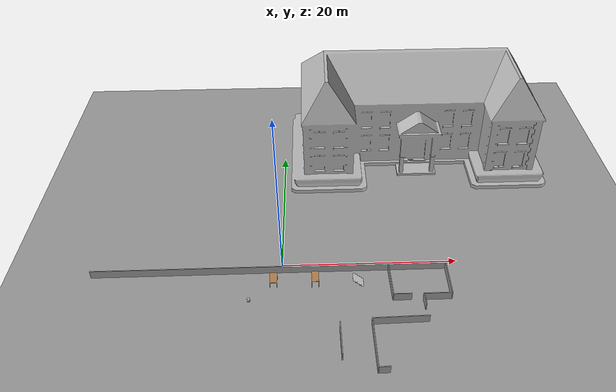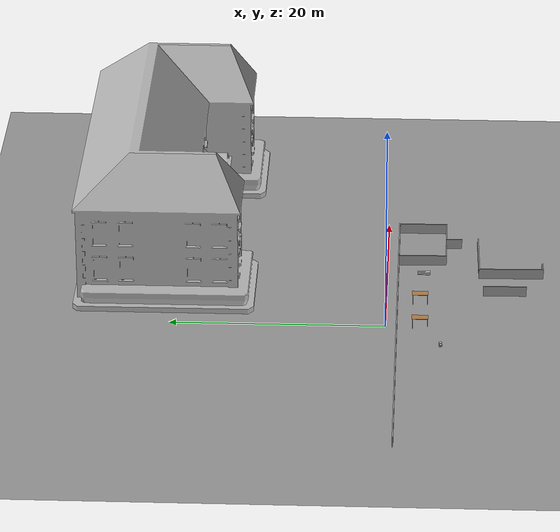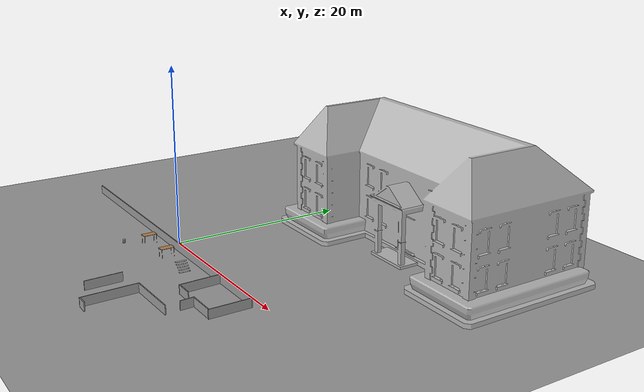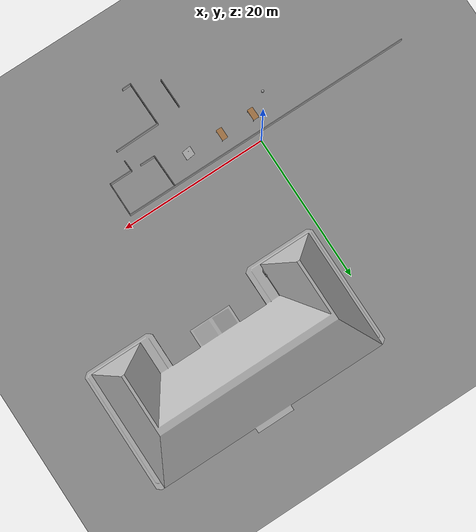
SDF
<sdf version="1.6">
 <world name="default">
  <model name="ground_plane_0">
   <static>1</static>
   <link name="link">
    <collision name="collision">
     <geometry><plane><normal>0 0 1</normal><size>100 100</size></plane></geometry>
     <surface><friction><ode><mu>100</mu><mu2>50</mu2></ode></friction></surface>
    </collision>
    <visual name="visual">
     <cast_shadows>0</cast_shadows>
     <geometry><plane><normal>0 0 1</normal><size>100 100</size></plane></geometry>
     <material>
      <script><uri>file://media/materials/scripts/gazebo.material</uri><name>Gazebo/Grey</name></script>
     </material>
    </visual>
    <velocity_decay><linear>0</linear><angular>0</angular></velocity_decay>
   </link>
   <pose>0.497681 0 0 0 -0 0</pose>
  </model>
  <model name="mobile_base">
   <link name="base_footprint">
    <inertial>
     <pose>-0.002635 -4.1e-05 0.129243 0 -0 0</pose>
     <mass>4.6973</mass>
     <inertia>
      <ixx>0.1365</ixx>
      <ixy>-2.51802e-05</ixy>
      <ixz>0.0108194</ixz>
      <iyy>0.132157</iyy>
      <iyz>4.89572e-05</iyz>
      <izz>0.0741648</izz>
     </inertia>
    </inertial>
    <collision name="base_footprint_fixed_joint_lump__base_collision">
     <pose>0 0 0.06969 0 -0 0</pose>
     <geometry><cylinder><length>0.10938</length><radius>0.178</radius></cylinder></geometry>
    </collision>
    <collision name="base_footprint_fixed_joint_lump__camera_link_collision_1">
     <pose>-0.087 -0.0015 0.2972 0 -0 0</pose>
     <geometry><box><size>0.073 0.276 0.072</size></box></geometry>
    </collision>
    <collision name="base_footprint_fixed_joint_lump__caster_back_link_collision_2">
     <pose>-0.135 0 0.0192 -1.5708 0 0</pose>
     <geometry><cylinder><length>0.0176</length><radius>0.017</radius></cylinder></geometry>
     <surface>
      <contact><ode><kp>1e+06</kp><kd>100</kd><max_vel>1</max_vel><min_depth>0.001</min_depth></ode></contact>
      <friction><ode><mu>0</mu><mu2>0</mu2></ode></friction>
     </surface>
    </collision>
    <collision name="base_footprint_fixed_joint_lump__caster_front_link_collision_3">
     <pose>0.115 0 0.0172 -1.5708 0 0</pose>
     <geometry><cylinder><length>0.0176</length><radius>0.017</radius></cylinder></geometry>
     <surface>
      <contact><ode><kp>1e+06</kp><kd>100</kd><max_vel>1</max_vel><min_depth>0.001</min_depth></ode></contact>
      <friction><ode><mu>0</mu><mu2>0</mu2></ode></friction>
     </surface>
    </collision>
    <collision name="base_footprint_fixed_joint_lump__mount_asus_xtion_pro_link_collision_4">
     <pose>-0.1024 0 0.2822 0 -0 0</pose>
     <geometry><box><size>0.033 0.276 0.012</size></box></geometry>
    </collision>
    <collision name="base_footprint_fixed_joint_lump__plate_bottom_link_collision_5">
     <pose>0 0 0.1408 0 -0 0</pose>
     <geometry><cylinder><length>0.006</length><radius>0.17</radius></cylinder></geometry>
    </collision>
    <collision name="base_footprint_fixed_joint_lump__plate_middle_link_collision_6">
     <pose>0 0 0.1976 0 -0 0</pose>
     <geometry><cylinder><length>0.006</length><radius>0.17</radius></cylinder></geometry>
    </collision>
    <collision name="base_footprint_fixed_joint_lump__plate_top_link_collision_7">
     <pose>0 0 0.4068 0 -0 0</pose>
     <geometry><cylinder><length>0.006</length><radius>0.17</radius></cylinder></geometry>
    </collision>
    <collision name="base_footprint_fixed_joint_lump__pole_bottom_0_link_collision_8">
     <pose>0.12 0.082 0.113 0 -0 0</pose>
     <geometry><cylinder><length>0.0492</length><radius>0.006</radius></cylinder></geometry>
    </collision>
    <collision name="base_footprint_fixed_joint_lump__pole_bottom_1_link_collision_9">
     <pose>0.055 0.12 0.113 0 -0 0</pose>
     <geometry><cylinder><length>0.0492</length><radius>0.006</radius></cylinder></geometry>
    </collision>
    <collision name="base_footprint_fixed_joint_lump__pole_bottom_2_link_collision_10">
     <pose>-0.055 0.12 0.113 0 -0 0</pose>
     <geometry><cylinder><length>0.0492</length><radius>0.006</radius></cylinder></geometry>
    </collision>
    <collision name="base_footprint_fixed_joint_lump__pole_bottom_3_link_collision_11">
     <pose>0.12 -0.082 0.113 0 -0 0</pose>
     <geometry><cylinder><length>0.0492</length><radius>0.006</radius></cylinder></geometry>
    </collision>
    <collision name="base_footprint_fixed_joint_lump__pole_bottom_4_link_collision_12">
     <pose>0.055 -0.12 0.113 0 -0 0</pose>
     <geometry><cylinder><length>0.0492</length><radius>0.006</radius></cylinder></geometry>
    </collision>
    <collision name="base_footprint_fixed_joint_lump__pole_bottom_5_link_collision_13">
     <pose>-0.055 -0.12 0.113 0 -0 0</pose>
     <geometry><cylinder><length>0.0492</length><radius>0.006</radius></cylinder></geometry>
    </collision>
    <collision name="base_footprint_fixed_joint_lump__pole_kinect_0_link_collision_14">
     <pose>-0.1024 0.098 0.2474 0 -0 0</pose>
     <geometry><cylinder><length>0.0936</length><radius>0.006</radius></cylinder></geometry>
    </collision>
    <collision name="base_footprint_fixed_joint_lump__pole_kinect_1_link_collision_15">
     <pose>-0.1024 -0.098 0.2474 0 -0 0</pose>
     <geometry><cylinder><length>0.0936</length><radius>0.006</radius></cylinder></geometry>
    </collision>
    <collision name="base_footprint_fixed_joint_lump__pole_middle_0_link_collision_16">
     <pose>0.0381 0.1505 0.1742 0 -0 0</pose>
     <geometry><cylinder><length>0.0608</length><radius>0.006</radius></cylinder></geometry>
    </collision>
    <collision name="base_footprint_fixed_joint_lump__pole_middle_1_link_collision_17">
     <pose>0.0381 -0.1505 0.1742 0 -0 0</pose>
     <geometry><cylinder><length>0.0608</length><radius>0.006</radius></cylinder></geometry>
    </collision>
    <collision name="base_footprint_fixed_joint_lump__pole_middle_2_link_collision_18">
     <pose>-0.0381 0.1505 0.1742 0 -0 0</pose>
     <geometry><cylinder><length>0.0608</length><radius>0.006</radius></cylinder></geometry>
    </collision>
    <collision name="base_footprint_fixed_joint_lump__pole_middle_3_link_collision_19">
     <pose>-0.0381 -0.1505 0.1742 0 -0 0</pose>
     <geometry><cylinder><length>0.0608</length><radius>0.006</radius></cylinder></geometry>
    </collision>
    <collision name="base_footprint_fixed_joint_lump__pole_top_0_link_collision_20">
     <pose>0.0381 0.1505 0.3022 0 -0 0</pose>
     <geometry><cylinder><length>0.2032</length><radius>0.006</radius></cylinder></geometry>
    </collision>
    <collision name="base_footprint_fixed_joint_lump__pole_top_1_link_collision_21">
     <pose>0.0381 -0.1505 0.3022 0 -0 0</pose>
     <geometry><cylinder><length>0.2032</length><radius>0.006</radius></cylinder></geometry>
    </collision>
    <collision name="base_footprint_fixed_joint_lump__pole_top_2_link_collision_22">
     <pose>-0.0381 0.1505 0.3022 0 -0 0</pose>
     <geometry><cylinder><length>0.2032</length><radius>0.006</radius></cylinder></geometry>
    </collision>
    <collision name="base_footprint_fixed_joint_lump__pole_top_3_link_collision_23">
     <pose>-0.0381 -0.1505 0.3022 0 -0 0</pose>
     <geometry><cylinder><length>0.2032</length><radius>0.006</radius></cylinder></geometry>
    </collision>
    <visual name="base_footprint_fixed_joint_lump__base_link_visual">
     <pose>0.001 0 0.06219 0 -0 0</pose>
     <geometry>
      <mesh><scale>1 1 1</scale><uri>/opt/ros/kinetic/share/kobuki_description/meshes/main_body.dae</uri></mesh>
     </geometry>
     <material><script><uri>__default__</uri><name>__default__</name></script></material>
    </visual>
    <visual name="base_footprint_fixed_joint_lump__camera_link_visual_1">
     <pose>-0.102 0.002 0.3012 0 -0 0</pose>
     <geometry>
      <mesh>
       <scale>1 1 1</scale>
       <uri>/opt/ros/kinetic/share/turtlebot_description/meshes/sensors/xtion_pro_camera.dae</uri>
      </mesh>
     </geometry>
     <material><script><uri>__default__</uri><name>__default__</name></script></material>
    </visual>
    <visual name="base_footprint_fixed_joint_lump__mount_asus_xtion_pro_link_visual_2">
     <pose>-0.1024 0 0.2822 -1.5708 0 0</pose>
     <geometry>
      <mesh>
       <scale>1 1 1</scale>
       <uri>/opt/ros/kinetic/share/turtlebot_description/meshes/sensors/xtion_pro_stack.dae</uri>
      </mesh>
     </geometry>
    </visual>
    <visual name="base_footprint_fixed_joint_lump__plate_bottom_link_visual_3">
     <pose>0.02364 0 0.1408 0 -0 0</pose>
     <geometry>
      <mesh>
       <scale>1 1 1</scale>
       <uri>/opt/ros/kinetic/share/turtlebot_description/meshes/stacks/hexagons/plate_bottom.dae</uri>
      </mesh>
     </geometry>
    </visual>
    <visual name="base_footprint_fixed_joint_lump__plate_middle_link_visual_4">
     <pose>-0.01364 0 0.1976 0 -0 0</pose>
     <geometry>
      <mesh>
       <scale>1 1 1</scale>
       <uri>/opt/ros/kinetic/share/turtlebot_description/meshes/stacks/hexagons/plate_middle.dae</uri>
      </mesh>
     </geometry>
    </visual>
    <visual name="base_footprint_fixed_joint_lump__plate_top_link_visual_5">
     <pose>-0.01364 0 0.4068 0 -0 0</pose>
     <geometry>
      <mesh>
       <scale>1 1 1</scale>
       <uri>/opt/ros/kinetic/share/turtlebot_description/meshes/stacks/hexagons/plate_top.dae</uri>
      </mesh>
     </geometry>
    </visual>
    <visual name="base_footprint_fixed_joint_lump__pole_bottom_0_link_visual_6">
     <pose>0.12 0.082 0.113 0 -0 0</pose>
     <geometry>
      <mesh>
       <scale>1 1 1</scale>
       <uri>/opt/ros/kinetic/share/turtlebot_description/meshes/stacks/hexagons/pole_bottom.dae</uri>
      </mesh>
     </geometry>
    </visual>
    <visual name="base_footprint_fixed_joint_lump__pole_bottom_1_link_visual_7">
     <pose>0.055 0.12 0.113 0 -0 0</pose>
     <geometry>
      <mesh>
       <scale>1 1 1</scale>
       <uri>/opt/ros/kinetic/share/turtlebot_description/meshes/stacks/hexagons/pole_bottom.dae</uri>
      </mesh>
     </geometry>
    </visual>
    <visual name="base_footprint_fixed_joint_lump__pole_bottom_2_link_visual_8">
     <pose>-0.055 0.12 0.113 0 -0 0</pose>
     <geometry>
      <mesh>
       <scale>1 1 1</scale>
       <uri>/opt/ros/kinetic/share/turtlebot_description/meshes/stacks/hexagons/pole_bottom.dae</uri>
      </mesh>
     </geometry>
    </visual>
    <visual name="base_footprint_fixed_joint_lump__pole_bottom_3_link_visual_9">
     <pose>0.12 -0.082 0.113 0 -0 0</pose>
     <geometry>
      <mesh>
       <scale>1 1 1</scale>
       <uri>/opt/ros/kinetic/share/turtlebot_description/meshes/stacks/hexagons/pole_bottom.dae</uri>
      </mesh>
     </geometry>
    </visual>
    <visual name="base_footprint_fixed_joint_lump__pole_bottom_4_link_visual_10">
     <pose>0.055 -0.12 0.113 0 -0 0</pose>
     <geometry>
      <mesh>
       <scale>1 1 1</scale>
       <uri>/opt/ros/kinetic/share/turtlebot_description/meshes/stacks/hexagons/pole_bottom.dae</uri>
      </mesh>
     </geometry>
    </visual>
    <visual name="base_footprint_fixed_joint_lump__pole_bottom_5_link_visual_11">
     <pose>-0.055 -0.12 0.113 0 -0 0</pose>
     <geometry>
      <mesh>
       <scale>1 1 1</scale>
       <uri>/opt/ros/kinetic/share/turtlebot_description/meshes/stacks/hexagons/pole_bottom.dae</uri>
      </mesh>
     </geometry>
    </visual>
    <visual name="base_footprint_fixed_joint_lump__pole_kinect_0_link_visual_12">
     <pose>-0.1024 0.098 0.2374 0 -0 0</pose>
     <geometry>
      <mesh>
       <scale>1 1 1</scale>
       <uri>/opt/ros/kinetic/share/turtlebot_description/meshes/sensors/sensor_pole.dae</uri>
      </mesh>
     </geometry>
    </visual>
    <visual name="base_footprint_fixed_joint_lump__pole_kinect_1_link_visual_13">
     <pose>-0.1024 -0.098 0.2374 0 -0 0</pose>
     <geometry>
      <mesh>
       <scale>1 1 1</scale>
       <uri>/opt/ros/kinetic/share/turtlebot_description/meshes/sensors/sensor_pole.dae</uri>
      </mesh>
     </geometry>
    </visual>
    <visual name="base_footprint_fixed_joint_lump__pole_middle_0_link_visual_14">
     <pose>0.0381 0.1505 0.1742 3.14159 -0 3.14159</pose>
     <geometry>
      <mesh>
       <scale>1 1 1</scale>
       <uri>/opt/ros/kinetic/share/turtlebot_description/meshes/stacks/hexagons/pole_middle.dae</uri>
      </mesh>
     </geometry>
    </visual>
    <visual name="base_footprint_fixed_joint_lump__pole_middle_1_link_visual_15">
     <pose>0.0381 -0.1505 0.1742 3.14159 -0 3.14159</pose>
     <geometry>
      <mesh>
       <scale>1 1 1</scale>
       <uri>/opt/ros/kinetic/share/turtlebot_description/meshes/stacks/hexagons/pole_middle.dae</uri>
      </mesh>
     </geometry>
    </visual>
    <visual name="base_footprint_fixed_joint_lump__pole_middle_2_link_visual_16">
     <pose>-0.0381 0.1505 0.1742 3.14159 -0 3.14159</pose>
     <geometry>
      <mesh>
       <scale>1 1 1</scale>
       <uri>/opt/ros/kinetic/share/turtlebot_description/meshes/stacks/hexagons/pole_middle.dae</uri>
      </mesh>
     </geometry>
    </visual>
    <visual name="base_footprint_fixed_joint_lump__pole_middle_3_link_visual_17">
     <pose>-0.0381 -0.1505 0.1742 3.14159 -0 3.14159</pose>
     <geometry>
      <mesh>
       <scale>1 1 1</scale>
       <uri>/opt/ros/kinetic/share/turtlebot_description/meshes/stacks/hexagons/pole_middle.dae</uri>
      </mesh>
     </geometry>
    </visual>
    <visual name="base_footprint_fixed_joint_lump__pole_top_0_link_visual_18">
     <pose>0.0381 0.1505 0.3022 0 -0 0</pose>
     <geometry>
      <mesh>
       <scale>1 1 1</scale>
       <uri>/opt/ros/kinetic/share/turtlebot_description/meshes/stacks/hexagons/pole_top.dae</uri>
      </mesh>
     </geometry>
    </visual>
    <visual name="base_footprint_fixed_joint_lump__pole_top_1_link_visual_19">
     <pose>0.0381 -0.1505 0.3022 0 -0 0</pose>
     <geometry>
      <mesh>
       <scale>1 1 1</scale>
       <uri>/opt/ros/kinetic/share/turtlebot_description/meshes/stacks/hexagons/pole_top.dae</uri>
      </mesh>
     </geometry>
    </visual>
    <visual name="base_footprint_fixed_joint_lump__pole_top_2_link_visual_20">
     <pose>-0.0381 0.1505 0.3022 0 -0 0</pose>
     <geometry>
      <mesh>
       <scale>1 1 1</scale>
       <uri>/opt/ros/kinetic/share/turtlebot_description/meshes/stacks/hexagons/pole_top.dae</uri>
      </mesh>
     </geometry>
    </visual>
    <visual name="base_footprint_fixed_joint_lump__pole_top_3_link_visual_21">
     <pose>-0.0381 -0.1505 0.3022 0 -0 0</pose>
     <geometry>
      <mesh>
       <scale>1 1 1</scale>
       <uri>/opt/ros/kinetic/share/turtlebot_description/meshes/stacks/hexagons/pole_top.dae</uri>
      </mesh>
     </geometry>
    </visual>
    <sensor name="bumpers" type="contact">
     <always_on>1</always_on>
     <update_rate>50</update_rate>
     <visualize>1</visualize>
     <contact>
      <collision>base_footprint_fixed_joint_lump__base_collision</collision>
      <topic>__default_topic__</topic>
     </contact>
     <pose>0 0 0.0102 0 -0 0</pose>
    </sensor>
    <sensor name="camera" type="depth">
     <always_on>1</always_on>
     <update_rate>20</update_rate>
     <camera name="__default__">
      <horizontal_fov>1.0472</horizontal_fov>
      <image><format>B8G8R8</format><width>640</width><height>480</height></image>
      <clip><near>0.05</near><far>8</far></clip>
     </camera>
     <plugin name="kinect_camera_controller" filename="libgazebo_ros_openni_kinect.so">
      <cameraName>camera</cameraName>
      <alwaysOn>true</alwaysOn>
      <updateRate>10</updateRate>
      <imageTopicName>rgb/image_raw</imageTopicName>
      <depthImageTopicName>depth/image_raw</depthImageTopicName>
      <pointCloudTopicName>depth/points</pointCloudTopicName>
      <cameraInfoTopicName>rgb/camera_info</cameraInfoTopicName>
      <depthImageCameraInfoTopicName>depth/camera_info</depthImageCameraInfoTopicName>
      <frameName>camera_depth_optical_frame</frameName>
      <baseline>0.1</baseline>
      <distortion_k1>0.0</distortion_k1>
      <distortion_k2>0.0</distortion_k2>
      <distortion_k3>0.0</distortion_k3>
      <distortion_t1>0.0</distortion_t1>
      <distortion_t2>0.0</distortion_t2>
      <pointCloudCutoff>0.4</pointCloudCutoff>
      <robotNamespace>/</robotNamespace>
     </plugin>
     <pose>-0.087 -0.0015 0.2972 0 -0 0</pose>
    </sensor>
    <sensor name="cliff_sensor_front" type="ray">
     <always_on>1</always_on>
     <update_rate>50</update_rate>
     <visualize>1</visualize>
     <ray>
      <scan>
       <horizontal>
        <samples>50</samples>
        <resolution>1</resolution>
        <min_angle>-0.0436</min_angle>
        <max_angle>0.0436</max_angle>
       </horizontal>
       <vertical><samples>1</samples><min_angle>0</min_angle><max_angle>0</max_angle></vertical>
      </scan>
      <range><min>0.01</min><max>0.15</max><resolution>1</resolution></range>
     </ray>
     <pose>0.156 0 0.0316 3.14159 1.57079 3.14159</pose>
    </sensor>
    <sensor name="cliff_sensor_left" type="ray">
     <always_on>1</always_on>
     <update_rate>50</update_rate>
     <visualize>1</visualize>
     <ray>
      <scan>
       <horizontal>
        <samples>50</samples>
        <resolution>1</resolution>
        <min_angle>-0.0436</min_angle>
        <max_angle>0.0436</max_angle>
       </horizontal>
       <vertical><samples>1</samples><min_angle>0</min_angle><max_angle>0</max_angle></vertical>
      </scan>
      <range><min>0.01</min><max>0.15</max><resolution>1</resolution></range>
     </ray>
     <pose>0.08734 0.13601 0.0316 3.14159 1.57079 3.14159</pose>
    </sensor>
    <sensor name="cliff_sensor_right" type="ray">
     <always_on>1</always_on>
     <update_rate>50</update_rate>
     <visualize>1</visualize>
     <ray>
      <scan>
       <horizontal>
        <samples>50</samples>
        <resolution>1</resolution>
        <min_angle>-0.0436</min_angle>
        <max_angle>0.0436</max_angle>
       </horizontal>
       <vertical><samples>1</samples><min_angle>0</min_angle><max_angle>0</max_angle></vertical>
      </scan>
      <range><min>0.01</min><max>0.15</max><resolution>1</resolution></range>
     </ray>
     <pose>0.085 -0.13601 0.0316 3.14159 1.57079 3.14159</pose>
    </sensor>
    <sensor name="imu" type="imu">
     <always_on>1</always_on>
     <update_rate>50</update_rate>
     <visualize>0</visualize>
     <imu>
      <angular_velocity>
       <x>
        <noise type="gaussian">
         <mean>0</mean>
         <stddev>1.96e-06</stddev>
         <bias_mean>0</bias_mean>
         <bias_stddev>0</bias_stddev>
        </noise>
       </x>
       <y>
        <noise type="gaussian">
         <mean>0</mean>
         <stddev>1.96e-06</stddev>
         <bias_mean>0</bias_mean>
         <bias_stddev>0</bias_stddev>
        </noise>
       </y>
       <z>
        <noise type="gaussian">
         <mean>0</mean>
         <stddev>1.96e-06</stddev>
         <bias_mean>0</bias_mean>
         <bias_stddev>0</bias_stddev>
        </noise>
       </z>
      </angular_velocity>
      <linear_acceleration>
       <x>
        <noise type="gaussian">
         <mean>0</mean>
         <stddev>0.017</stddev>
         <bias_mean>0.1</bias_mean>
         <bias_stddev>0.001</bias_stddev>
        </noise>
       </x>
       <y>
        <noise type="gaussian">
         <mean>0</mean>
         <stddev>0.017</stddev>
         <bias_mean>0.1</bias_mean>
         <bias_stddev>0.001</bias_stddev>
        </noise>
       </y>
       <z>
        <noise type="gaussian">
         <mean>0</mean>
         <stddev>0.017</stddev>
         <bias_mean>0.1</bias_mean>
         <bias_stddev>0.001</bias_stddev>
        </noise>
       </z>
      </linear_acceleration>
     </imu>
     <pose>0.056 0.062 0.0304 0 -0 0</pose>
    </sensor>
   </link>
   <link name="wheel_left_link">
    <pose>0 0.115 0.0352 -1.5708 0 0</pose>
    <inertial>
     <mass>0.01</mass>
     <inertia><ixx>0.001</ixx><ixy>0</ixy><ixz>0</ixz><iyy>0.001</iyy><iyz>0</iyz><izz>0.001</izz></inertia>
    </inertial>
    <collision name="wheel_left_link_collision">
     <geometry><cylinder><length>0.0206</length><radius>0.0352</radius></cylinder></geometry>
     <surface>
      <contact><ode><kp>1e+06</kp><kd>100</kd><max_vel>1</max_vel><min_depth>0.001</min_depth></ode></contact>
      <friction><ode><mu>1</mu><mu2>1</mu2></ode></friction>
     </surface>
    </collision>
    <visual name="wheel_left_link_visual">
     <geometry>
      <mesh><scale>1 1 1</scale><uri>/opt/ros/kinetic/share/kobuki_description/meshes/wheel.dae</uri></mesh>
     </geometry>
     <material><script><uri>__default__</uri><name>__default__</name></script></material>
    </visual>
   </link>
   <joint name="wheel_left_joint" type="revolute">
    <child>wheel_left_link</child>
    <parent>base_footprint</parent>
    <axis>
     <xyz>0 1 0</xyz>
     <limit><lower>-1e+16</lower><upper>1e+16</upper></limit>
     <dynamics><spring_reference>0</spring_reference><spring_stiffness>0</spring_stiffness></dynamics>
     <use_parent_model_frame>1</use_parent_model_frame>
    </axis>
   </joint>
   <link name="wheel_right_link">
    <pose>0 -0.115 0.0352 -1.5708 0 0</pose>
    <inertial>
     <mass>0.01</mass>
     <inertia><ixx>0.001</ixx><ixy>0</ixy><ixz>0</ixz><iyy>0.001</iyy><iyz>0</iyz><izz>0.001</izz></inertia>
    </inertial>
    <collision name="wheel_right_link_collision">
     <geometry><cylinder><length>0.0206</length><radius>0.035</radius></cylinder></geometry>
     <surface>
      <contact><ode><kp>1e+06</kp><kd>100</kd><max_vel>1</max_vel><min_depth>0.001</min_depth></ode></contact>
      <friction><ode><mu>1</mu><mu2>1</mu2></ode></friction>
     </surface>
    </collision>
    <visual name="wheel_right_link_visual">
     <geometry>
      <mesh><scale>1 1 1</scale><uri>/opt/ros/kinetic/share/kobuki_description/meshes/wheel.dae</uri></mesh>
     </geometry>
     <material><script><uri>__default__</uri><name>__default__</name></script></material>
    </visual>
   </link>
   <joint name="wheel_right_joint" type="revolute">
    <child>wheel_right_link</child>
    <parent>base_footprint</parent>
    <axis>
     <xyz>0 1 0</xyz>
     <limit><lower>-1e+16</lower><upper>1e+16</upper></limit>
     <dynamics><spring_reference>0</spring_reference><spring_stiffness>0</spring_stiffness></dynamics>
     <use_parent_model_frame>1</use_parent_model_frame>
    </axis>
   </joint>
   <static>0</static>
   <plugin name="kobuki_controller" filename="libgazebo_ros_kobuki.so">
    <publish_tf>1</publish_tf>
    <left_wheel_joint_name>wheel_left_joint</left_wheel_joint_name>
    <right_wheel_joint_name>wheel_right_joint</right_wheel_joint_name>
    <wheel_separation>.230</wheel_separation>
    <wheel_diameter>0.070</wheel_diameter>
    <torque>1.0</torque>
    <velocity_command_timeout>0.6</velocity_command_timeout>
    <cliff_sensor_left_name>cliff_sensor_left</cliff_sensor_left_name>
    <cliff_sensor_center_name>cliff_sensor_front</cliff_sensor_center_name>
    <cliff_sensor_right_name>cliff_sensor_right</cliff_sensor_right_name>
    <cliff_detection_threshold>0.04</cliff_detection_threshold>
    <bumper_name>bumpers</bumper_name>
    <imu_name>imu</imu_name>
    <robotNamespace>/</robotNamespace>
   </plugin>
   <pose>-3.52655 -5.10992 -0.001131 5.8e-05 -0.007995 -1.50782</pose>
  </model>
  <model name="big_project_room">
   <link name="link">
    <pose>14.0349 -2.99213 2.5e-05 0 -0 0.019261</pose>
    <inertial>
     <mass>0.0501598</mass>
     <inertia>
      <ixx>0.00418042</ixx>
      <ixy>0</ixy>
      <ixz>0</ixz>
      <iyy>0.104263</iyy>
      <iyz>0</iyz>
      <izz>0.100083</izz>
     </inertia>
    </inertial>
    <visual name="visual">
     <geometry><box><size>6.096 0.10251 1</size></box></geometry>
     <material>
      <script><name>Gazebo/Grey</name><uri>file://media/materials/scripts/gazebo.material</uri></script>
      <shader type="pixel"><normal_map>__default__</normal_map></shader>
      <ambient>1 1 1 1</ambient>
      <diffuse>0.7 0.7 0.7 1</diffuse>
      <specular>0.01 0.01 0.01 1</specular>
      <emissive>0 0 0 1</emissive>
     </material>
    </visual>
    <collision name="collision">
     <geometry><box><size>6.096 0.10251 1</size></box></geometry>
     <surface>
      <friction>
       <ode><mu>1</mu><mu2>1</mu2><fdir1>0 0 0</fdir1><slip1>0</slip1><slip2>0</slip2></ode>
       <torsional>
        <coefficient>1</coefficient>
        <patch_radius>0</patch_radius>
        <surface_radius>0</surface_radius>
        <use_patch_radius>1</use_patch_radius>
        <ode><slip>0</slip></ode>
       </torsional>
      </friction>
      <bounce><restitution_coefficient>0</restitution_coefficient><threshold>1e+06</threshold></bounce>
      <contact>
       <collide_without_contact>0</collide_without_contact>
       <collide_without_contact_bitmask>1</collide_without_contact_bitmask>
       <collide_bitmask>1</collide_bitmask>
       <ode>
        <soft_cfm>0</soft_cfm>
        <soft_erp>0.2</soft_erp>
        <kp>1e+13</kp>
        <kd>1</kd>
        <max_vel>0.01</max_vel>
        <min_depth>0</min_depth>
       </ode>
       <bullet>
        <split_impulse>1</split_impulse>
        <split_impulse_penetration_threshold>-0.01</split_impulse_penetration_threshold>
        <soft_cfm>0</soft_cfm>
        <soft_erp>0.2</soft_erp>
        <kp>1e+13</kp>
        <kd>1</kd>
       </bullet>
      </contact>
     </surface>
    </collision>
   </link>
   <link name="link_0_clone">
    <pose>19.9441 2.29599 -0.01875 0.00066 0.00066 -1.57077</pose>
    <inertial>
     <mass>1</mass>
     <inertia>
      <ixx>0.166667</ixx>
      <ixy>0</ixy>
      <ixz>0</ixz>
      <iyy>0.166667</iyy>
      <iyz>0</iyz>
      <izz>0.166667</izz>
     </inertia>
    </inertial>
    <visual name="visual">
     <geometry><box><size>4.527 0.1 1</size></box></geometry>
     <material>
      <lighting>1</lighting>
      <script><uri>file://media/materials/scripts/gazebo.material</uri><name>Gazebo/Grey</name></script>
      <shader type="pixel"><normal_map>__default__</normal_map></shader>
      <ambient>1 1 1 1</ambient>
      <diffuse>0.7 0.7 0.7 1</diffuse>
      <specular>0.01 0.01 0.01 1</specular>
      <emissive>0 0 0 1</emissive>
     </material>
    </visual>
    <collision name="collision">
     <geometry><box><size>4.572 0.1 1</size></box></geometry>
     <surface>
      <friction>
       <ode><mu>1</mu><mu2>1</mu2><fdir1>0 0 0</fdir1><slip1>0</slip1><slip2>0</slip2></ode>
       <torsional>
        <coefficient>1</coefficient>
        <patch_radius>0</patch_radius>
        <surface_radius>0</surface_radius>
        <use_patch_radius>1</use_patch_radius>
        <ode><slip>0</slip></ode>
       </torsional>
      </friction>
      <bounce><restitution_coefficient>0</restitution_coefficient><threshold>1e+06</threshold></bounce>
      <contact>
       <collide_without_contact>0</collide_without_contact>
       <collide_without_contact_bitmask>1</collide_without_contact_bitmask>
       <collide_bitmask>1</collide_bitmask>
       <ode>
        <soft_cfm>0</soft_cfm>
        <soft_erp>0.2</soft_erp>
        <kp>1e+13</kp>
        <kd>1</kd>
        <max_vel>0.01</max_vel>
        <min_depth>0</min_depth>
       </ode>
       <bullet>
        <split_impulse>1</split_impulse>
        <split_impulse_penetration_threshold>-0.01</split_impulse_penetration_threshold>
        <soft_cfm>0</soft_cfm>
        <soft_erp>0.2</soft_erp>
        <kp>1e+13</kp>
        <kd>1</kd>
       </bullet>
      </contact>
     </surface>
    </collision>
   </link>
   <link name="link_0_clone_clone_clone_0">
    <pose>14.5732 0.114647 0.004935 -0.000664 0.000656 3.13495</pose>
    <inertial>
     <mass>1</mass>
     <inertia>
      <ixx>0.166667</ixx>
      <ixy>0</ixy>
      <ixz>0</ixz>
      <iyy>0.166667</iyy>
      <iyz>0</iyz>
      <izz>0.166667</izz>
     </inertia>
    </inertial>
    <visual name="visual">
     <geometry><box><size>2 0.1 1</size></box></geometry>
     <material>
      <lighting>1</lighting>
      <script><uri>file://media/materials/scripts/gazebo.material</uri><name>Gazebo/Grey</name></script>
      <shader type="pixel"><normal_map>__default__</normal_map></shader>
      <ambient>1 1 1 1</ambient>
      <diffuse>0.7 0.7 0.7 1</diffuse>
      <specular>0.01 0.01 0.01 1</specular>
      <emissive>0 0 0 1</emissive>
     </material>
    </visual>
    <collision name="collision">
     <geometry><box><size>2 0.1 1</size></box></geometry>
     <surface>
      <friction>
       <ode><mu>1</mu><mu2>1</mu2><fdir1>0 0 0</fdir1><slip1>0</slip1><slip2>0</slip2></ode>
       <torsional>
        <coefficient>1</coefficient>
        <patch_radius>0</patch_radius>
        <surface_radius>0</surface_radius>
        <use_patch_radius>1</use_patch_radius>
        <ode><slip>0</slip></ode>
       </torsional>
      </friction>
      <bounce><restitution_coefficient>0</restitution_coefficient><threshold>1e+06</threshold></bounce>
      <contact>
       <collide_without_contact>0</collide_without_contact>
       <collide_without_contact_bitmask>1</collide_without_contact_bitmask>
       <collide_bitmask>1</collide_bitmask>
       <ode>
        <soft_cfm>0</soft_cfm>
        <soft_erp>0.2</soft_erp>
        <kp>1e+13</kp>
        <kd>1</kd>
        <max_vel>0.01</max_vel>
        <min_depth>0</min_depth>
       </ode>
       <bullet>
        <split_impulse>1</split_impulse>
        <split_impulse_penetration_threshold>-0.01</split_impulse_penetration_threshold>
        <soft_cfm>0</soft_cfm>
        <soft_erp>0.2</soft_erp>
        <kp>1e+13</kp>
        <kd>1</kd>
       </bullet>
      </contact>
     </surface>
    </collision>
   </link>
   <link name="link_0_clone_clone_clone_clone_0">
    <pose>16.8828 -0.632141 0.009219 -0.000709 -0.001294 1.60824</pose>
    <inertial>
     <mass>1</mass>
     <inertia>
      <ixx>0.166667</ixx>
      <ixy>0</ixy>
      <ixz>0</ixz>
      <iyy>0.166667</iyy>
      <iyz>0</iyz>
      <izz>0.166667</izz>
     </inertia>
    </inertial>
    <visual name="visual">
     <geometry><box><size>1.524 0.1 1</size></box></geometry>
     <material>
      <lighting>1</lighting>
      <script><uri>file://media/materials/scripts/gazebo.material</uri><name>Gazebo/Grey</name></script>
      <shader type="pixel"><normal_map>__default__</normal_map></shader>
      <ambient>1 1 1 1</ambient>
      <diffuse>0.7 0.7 0.7 1</diffuse>
      <specular>0.01 0.01 0.01 1</specular>
      <emissive>0 0 0 1</emissive>
     </material>
    </visual>
    <collision name="collision">
     <geometry><box><size>1.524 0.1 1</size></box></geometry>
     <surface>
      <friction>
       <ode><mu>1</mu><mu2>1</mu2><fdir1>0 0 0</fdir1><slip1>0</slip1><slip2>0</slip2></ode>
       <torsional>
        <coefficient>1</coefficient>
        <patch_radius>0</patch_radius>
        <surface_radius>0</surface_radius>
        <use_patch_radius>1</use_patch_radius>
        <ode><slip>0</slip></ode>
       </torsional>
      </friction>
      <bounce><restitution_coefficient>0</restitution_coefficient><threshold>1e+06</threshold></bounce>
      <contact>
       <collide_without_contact>0</collide_without_contact>
       <collide_without_contact_bitmask>1</collide_without_contact_bitmask>
       <collide_bitmask>1</collide_bitmask>
       <ode>
        <soft_cfm>0</soft_cfm>
        <soft_erp>0.2</soft_erp>
        <kp>1e+13</kp>
        <kd>1</kd>
        <max_vel>0.01</max_vel>
        <min_depth>0</min_depth>
       </ode>
       <bullet>
        <split_impulse>1</split_impulse>
        <split_impulse_penetration_threshold>-0.01</split_impulse_penetration_threshold>
        <soft_cfm>0</soft_cfm>
        <soft_erp>0.2</soft_erp>
        <kp>1e+13</kp>
        <kd>1</kd>
       </bullet>
      </contact>
     </surface>
    </collision>
   </link>
   <link name="link_0_clone_clone_clone_clone_1">
    <pose>18.3965 0.082315 0.010039 -0.001319 0.000662 -3.14011</pose>
    <inertial>
     <mass>1</mass>
     <inertia>
      <ixx>0.166667</ixx>
      <ixy>0</ixy>
      <ixz>0</ixz>
      <iyy>0.166667</iyy>
      <iyz>0</iyz>
      <izz>0.166667</izz>
     </inertia>
    </inertial>
    <visual name="visual">
     <geometry><box><size>3 0.1 1</size></box></geometry>
     <material>
      <lighting>1</lighting>
      <script><uri>file://media/materials/scripts/gazebo.material</uri><name>Gazebo/Grey</name></script>
      <shader type="pixel"><normal_map>__default__</normal_map></shader>
      <ambient>1 1 1 1</ambient>
      <diffuse>0.7 0.7 0.7 1</diffuse>
      <specular>0.01 0.01 0.01 1</specular>
      <emissive>0 0 0 1</emissive>
     </material>
    </visual>
    <collision name="collision">
     <geometry><box><size>3 0.1 1</size></box></geometry>
     <surface>
      <friction>
       <ode><mu>1</mu><mu2>1</mu2><fdir1>0 0 0</fdir1><slip1>0</slip1><slip2>0</slip2></ode>
       <torsional>
        <coefficient>1</coefficient>
        <patch_radius>0</patch_radius>
        <surface_radius>0</surface_radius>
        <use_patch_radius>1</use_patch_radius>
        <ode><slip>0</slip></ode>
       </torsional>
      </friction>
      <bounce><restitution_coefficient>0</restitution_coefficient><threshold>1e+06</threshold></bounce>
      <contact>
       <collide_without_contact>0</collide_without_contact>
       <collide_without_contact_bitmask>1</collide_without_contact_bitmask>
       <collide_bitmask>1</collide_bitmask>
       <ode>
        <soft_cfm>0</soft_cfm>
        <soft_erp>0.2</soft_erp>
        <kp>1e+13</kp>
        <kd>1</kd>
        <max_vel>0.01</max_vel>
        <min_depth>0</min_depth>
       </ode>
       <bullet>
        <split_impulse>1</split_impulse>
        <split_impulse_penetration_threshold>-0.01</split_impulse_penetration_threshold>
        <soft_cfm>0</soft_cfm>
        <soft_erp>0.2</soft_erp>
        <kp>1e+13</kp>
        <kd>1</kd>
       </bullet>
      </contact>
     </surface>
    </collision>
   </link>
   <link name="link_clone">
    <pose>-0.007377 4.60801 0.003041 0.00066 -0 0</pose>
    <inertial>
     <mass>0.0501598</mass>
     <inertia>
      <ixx>0.00418042</ixx>
      <ixy>0</ixy>
      <ixz>0</ixz>
      <iyy>0.104263</iyy>
      <iyz>0</iyz>
      <izz>0.100083</izz>
     </inertia>
    </inertial>
    <visual name="visual">
     <geometry><box><size>40 0.10251 1</size></box></geometry>
     <material>
      <script><name>Gazebo/Grey</name><uri>file://media/materials/scripts/gazebo.material</uri></script>
      <shader type="pixel"><normal_map>__default__</normal_map></shader>
      <ambient>1 1 1 1</ambient>
      <diffuse>0.7 0.7 0.7 1</diffuse>
      <specular>0.01 0.01 0.01 1</specular>
      <emissive>0 0 0 1</emissive>
     </material>
    </visual>
    <collision name="collision">
     <geometry><box><size>40 0.10251 1</size></box></geometry>
     <surface>
      <friction>
       <ode><mu>1</mu><mu2>1</mu2><fdir1>0 0 0</fdir1><slip1>0</slip1><slip2>0</slip2></ode>
       <torsional>
        <coefficient>1</coefficient>
        <patch_radius>0</patch_radius>
        <surface_radius>0</surface_radius>
        <use_patch_radius>1</use_patch_radius>
        <ode><slip>0</slip></ode>
       </torsional>
      </friction>
      <bounce><restitution_coefficient>0</restitution_coefficient><threshold>1e+06</threshold></bounce>
      <contact>
       <collide_without_contact>0</collide_without_contact>
       <collide_without_contact_bitmask>1</collide_without_contact_bitmask>
       <collide_bitmask>1</collide_bitmask>
       <ode>
        <soft_cfm>0</soft_cfm>
        <soft_erp>0.2</soft_erp>
        <kp>1e+13</kp>
        <kd>1</kd>
        <max_vel>0.01</max_vel>
        <min_depth>0</min_depth>
       </ode>
       <bullet>
        <split_impulse>1</split_impulse>
        <split_impulse_penetration_threshold>-0.01</split_impulse_penetration_threshold>
        <soft_cfm>0</soft_cfm>
        <soft_erp>0.2</soft_erp>
        <kp>1e+13</kp>
        <kd>1</kd>
       </bullet>
      </contact>
     </surface>
    </collision>
   </link>
   <link name="link_clone_0">
    <pose>13.4826 2.33415 0.001565 1.7e-05 0.00066 -1.54442</pose>
    <inertial>
     <mass>0.0373227</mass>
     <inertia>
      <ixx>0.00314291</ixx>
      <ixy>0</ixy>
      <ixz>0</ixz>
      <iyy>0.067101</iyy>
      <iyz>0</iyz>
      <izz>0.0640235</izz>
     </inertia>
    </inertial>
    <visual name="visual">
     <geometry><box><size>4.53589 0.10251 1</size></box></geometry>
     <material>
      <script><name>Gazebo/Grey</name><uri>file://media/materials/scripts/gazebo.material</uri></script>
      <shader type="pixel"><normal_map>__default__</normal_map></shader>
      <ambient>1 1 1 1</ambient>
      <diffuse>0.7 0.7 0.7 1</diffuse>
      <specular>0.01 0.01 0.01 1</specular>
      <emissive>0 0 0 1</emissive>
     </material>
    </visual>
    <collision name="collision">
     <geometry><box><size>4.53589 0.10251 1</size></box></geometry>
     <surface>
      <friction>
       <ode><mu>1</mu><mu2>1</mu2><fdir1>0 0 0</fdir1><slip1>0</slip1><slip2>0</slip2></ode>
       <torsional>
        <coefficient>1</coefficient>
        <patch_radius>0</patch_radius>
        <surface_radius>0</surface_radius>
        <use_patch_radius>1</use_patch_radius>
        <ode><slip>0</slip></ode>
       </torsional>
      </friction>
      <bounce><restitution_coefficient>0</restitution_coefficient><threshold>1e+06</threshold></bounce>
      <contact>
       <collide_without_contact>0</collide_without_contact>
       <collide_without_contact_bitmask>1</collide_without_contact_bitmask>
       <collide_bitmask>1</collide_bitmask>
       <ode>
        <soft_cfm>0</soft_cfm>
        <soft_erp>0.2</soft_erp>
        <kp>1e+13</kp>
        <kd>1</kd>
        <max_vel>0.01</max_vel>
        <min_depth>0</min_depth>
       </ode>
       <bullet>
        <split_impulse>1</split_impulse>
        <split_impulse_penetration_threshold>-0.01</split_impulse_penetration_threshold>
        <soft_cfm>0</soft_cfm>
        <soft_erp>0.2</soft_erp>
        <kp>1e+13</kp>
        <kd>1</kd>
       </bullet>
      </contact>
     </surface>
    </collision>
   </link>
   <link name="link_clone_1">
    <pose>11.064 -6.05479 -0.003971 1.2e-05 0.00066 -1.55284</pose>
    <inertial>
     <mass>0.0501598</mass>
     <inertia>
      <ixx>0.00418042</ixx>
      <ixy>0</ixy>
      <ixz>0</ixz>
      <iyy>0.104263</iyy>
      <iyz>0</iyz>
      <izz>0.100083</izz>
     </inertia>
    </inertial>
    <visual name="visual">
     <geometry><box><size>6.096 0.10251 1</size></box></geometry>
     <material>
      <script><name>Gazebo/Grey</name><uri>file://media/materials/scripts/gazebo.material</uri></script>
      <shader type="pixel"><normal_map>__default__</normal_map></shader>
      <ambient>1 1 1 1</ambient>
      <diffuse>0.7 0.7 0.7 1</diffuse>
      <specular>0.01 0.01 0.01 1</specular>
      <emissive>0 0 0 1</emissive>
     </material>
    </visual>
    <collision name="collision">
     <geometry><box><size>6.096 0.10251 1</size></box></geometry>
     <surface>
      <friction>
       <ode><mu>1</mu><mu2>1</mu2><fdir1>0 0 0</fdir1><slip1>0</slip1><slip2>0</slip2></ode>
       <torsional>
        <coefficient>1</coefficient>
        <patch_radius>0</patch_radius>
        <surface_radius>0</surface_radius>
        <use_patch_radius>1</use_patch_radius>
        <ode><slip>0</slip></ode>
       </torsional>
      </friction>
      <bounce><restitution_coefficient>0</restitution_coefficient><threshold>1e+06</threshold></bounce>
      <contact>
       <collide_without_contact>0</collide_without_contact>
       <collide_without_contact_bitmask>1</collide_without_contact_bitmask>
       <collide_bitmask>1</collide_bitmask>
       <ode>
        <soft_cfm>0</soft_cfm>
        <soft_erp>0.2</soft_erp>
        <kp>1e+13</kp>
        <kd>1</kd>
        <max_vel>0.01</max_vel>
        <min_depth>0</min_depth>
       </ode>
       <bullet>
        <split_impulse>1</split_impulse>
        <split_impulse_penetration_threshold>-0.01</split_impulse_penetration_threshold>
        <soft_cfm>0</soft_cfm>
        <soft_erp>0.2</soft_erp>
        <kp>1e+13</kp>
        <kd>1</kd>
       </bullet>
      </contact>
     </surface>
    </collision>
   </link>
   <link name="link_clone_1_clone_0">
    <pose>11.726 -9.03721 -0.009925 -0.00132 2.9e-05 -3.11953</pose>
    <inertial>
     <mass>0.00975708</mass>
     <inertia>
      <ixx>0.000821634</ixx>
      <ixy>0</ixy>
      <ixz>0</ixz>
      <iyy>0.00195639</iyy>
      <iyz>0</iyz>
      <izz>0.00115184</izz>
     </inertia>
    </inertial>
    <visual name="visual">
     <geometry><box><size>1.1858 0.10251 1</size></box></geometry>
     <material>
      <script><name>Gazebo/Grey</name><uri>file://media/materials/scripts/gazebo.material</uri></script>
      <shader type="pixel"><normal_map>__default__</normal_map></shader>
      <ambient>1 1 1 1</ambient>
      <diffuse>0.7 0.7 0.7 1</diffuse>
      <specular>0.01 0.01 0.01 1</specular>
      <emissive>0 0 0 1</emissive>
     </material>
    </visual>
    <collision name="collision">
     <geometry><box><size>1.1858 0.10251 1</size></box></geometry>
     <surface>
      <friction>
       <ode><mu>1</mu><mu2>1</mu2><fdir1>0 0 0</fdir1><slip1>0</slip1><slip2>0</slip2></ode>
       <torsional>
        <coefficient>1</coefficient>
        <patch_radius>0</patch_radius>
        <surface_radius>0</surface_radius>
        <use_patch_radius>1</use_patch_radius>
        <ode><slip>0</slip></ode>
       </torsional>
      </friction>
      <bounce><restitution_coefficient>0</restitution_coefficient><threshold>1e+06</threshold></bounce>
      <contact>
       <collide_without_contact>0</collide_without_contact>
       <collide_without_contact_bitmask>1</collide_without_contact_bitmask>
       <collide_bitmask>1</collide_bitmask>
       <ode>
        <soft_cfm>0</soft_cfm>
        <soft_erp>0.2</soft_erp>
        <kp>1e+13</kp>
        <kd>1</kd>
        <max_vel>0.01</max_vel>
        <min_depth>0</min_depth>
       </ode>
       <bullet>
        <split_impulse>1</split_impulse>
        <split_impulse_penetration_threshold>-0.01</split_impulse_penetration_threshold>
        <soft_cfm>0</soft_cfm>
        <soft_erp>0.2</soft_erp>
        <kp>1e+13</kp>
        <kd>1</kd>
       </bullet>
      </contact>
     </surface>
    </collision>
   </link>
   <link name="link_clone_1_clone_2_clone_3">
    <pose>7.65066 -5.4273 -0.006926 3e-05 0.00198 -1.55514</pose>
    <inertial>
     <mass>0.033243</mass>
     <inertia>
      <ixx>0.00279936</ixx>
      <ixy>0</ixy>
      <ixz>0</ixz>
      <iyy>0.047987</iyy>
      <iyz>0</iyz>
      <izz>0.0452459</izz>
     </inertia>
    </inertial>
    <visual name="visual">
     <geometry><box><size>4.04008 0.10251 1</size></box></geometry>
     <material>
      <script><name>Gazebo/Grey</name><uri>file://media/materials/scripts/gazebo.material</uri></script>
      <shader type="pixel"><normal_map>__default__</normal_map></shader>
      <ambient>1 1 1 1</ambient>
      <diffuse>0.7 0.7 0.7 1</diffuse>
      <specular>0.01 0.01 0.01 1</specular>
      <emissive>0 0 0 1</emissive>
     </material>
    </visual>
    <collision name="collision">
     <geometry><box><size>4.04008 0.10251 1</size></box></geometry>
     <surface>
      <friction>
       <ode><mu>1</mu><mu2>1</mu2><fdir1>0 0 0</fdir1><slip1>0</slip1><slip2>0</slip2></ode>
       <torsional>
        <coefficient>1</coefficient>
        <patch_radius>0</patch_radius>
        <surface_radius>0</surface_radius>
        <use_patch_radius>1</use_patch_radius>
        <ode><slip>0</slip></ode>
       </torsional>
      </friction>
      <bounce><restitution_coefficient>0</restitution_coefficient><threshold>1e+06</threshold></bounce>
      <contact>
       <collide_without_contact>0</collide_without_contact>
       <collide_without_contact_bitmask>1</collide_without_contact_bitmask>
       <collide_bitmask>1</collide_bitmask>
       <ode>
        <soft_cfm>0</soft_cfm>
        <soft_erp>0.2</soft_erp>
        <kp>1e+13</kp>
        <kd>1</kd>
        <max_vel>0.01</max_vel>
        <min_depth>0</min_depth>
       </ode>
       <bullet>
        <split_impulse>1</split_impulse>
        <split_impulse_penetration_threshold>-0.01</split_impulse_penetration_threshold>
        <soft_cfm>0</soft_cfm>
        <soft_erp>0.2</soft_erp>
        <kp>1e+13</kp>
        <kd>1</kd>
       </bullet>
      </contact>
     </surface>
    </collision>
   </link>
   <model name="nist_stairs_120">
    <static>1</static>
    <link name="nist_stairs_120_link">
     <collision name="collision">
      <geometry>
       <mesh><uri>model://nist_stairs_120/meshes/nist_stairs_120.dae</uri><scale>1 1 1</scale></mesh>
      </geometry>
     </collision>
     <visual name="visual">
      <geometry>
       <mesh><uri>model://nist_stairs_120/meshes/nist_stairs_120.dae</uri><scale>1 1 1</scale></mesh>
      </geometry>
     </visual>
    </link>
    <pose>9.85637 2.17467 0.001435 0 -0 1.55002</pose>
   </model>
   <model name="school">
    <static>1</static>
    <link name="link">
     <collision name="collision">
      <geometry><mesh><uri>model://school/meshes/school.dae</uri></mesh></geometry>
     </collision>
     <visual name="visual"><geometry><mesh><uri>model://school/meshes/school.dae</uri></mesh></geometry></visual>
    </link>
    <pose>18.8365 29.0248 0.019156 0 -0 0</pose>
   </model>
   <model name="table">
    <static>1</static>
    <link name="link">
     <collision name="surface">
      <pose>0 0 1 0 -0 0</pose>
      <geometry><box><size>1.5 0.8 0.03</size></box></geometry>
      <surface><friction><ode><mu>0.6</mu><mu2>0.6</mu2></ode></friction></surface>
     </collision>
     <visual name="visual1">
      <pose>0 0 1 0 -0 0</pose>
      <geometry><box><size>1.5 0.8 0.03</size></box></geometry>
      <material>
       <script><uri>file://media/materials/scripts/gazebo.material</uri><name>Gazebo/Wood</name></script>
      </material>
     </visual>
     <collision name="front_left_leg">
      <pose>0.68 0.38 0.5 0 -0 0</pose>
      <geometry><cylinder><radius>0.02</radius><length>1</length></cylinder></geometry>
     </collision>
     <visual name="front_left_leg">
      <pose>0.68 0.38 0.5 0 -0 0</pose>
      <geometry><cylinder><radius>0.02</radius><length>1</length></cylinder></geometry>
      <material>
       <script><uri>file://media/materials/scripts/gazebo.material</uri><name>Gazebo/Grey</name></script>
      </material>
     </visual>
     <collision name="front_right_leg">
      <pose>0.68 -0.38 0.5 0 -0 0</pose>
      <geometry><cylinder><radius>0.02</radius><length>1</length></cylinder></geometry>
     </collision>
     <visual name="front_right_leg">
      <pose>0.68 -0.38 0.5 0 -0 0</pose>
      <geometry><cylinder><radius>0.02</radius><length>1</length></cylinder></geometry>
      <material>
       <script><uri>file://media/materials/scripts/gazebo.material</uri><name>Gazebo/Grey</name></script>
      </material>
     </visual>
     <collision name="back_right_leg">
      <pose>-0.68 -0.38 0.5 0 -0 0</pose>
      <geometry><cylinder><radius>0.02</radius><length>1</length></cylinder></geometry>
     </collision>
     <visual name="back_right_leg">
      <pose>-0.68 -0.38 0.5 0 -0 0</pose>
      <geometry><cylinder><radius>0.02</radius><length>1</length></cylinder></geometry>
      <material>
       <script><uri>file://media/materials/scripts/gazebo.material</uri><name>Gazebo/Grey</name></script>
      </material>
     </visual>
     <collision name="back_left_leg">
      <pose>-0.68 0.38 0.5 0 -0 0</pose>
      <geometry><cylinder><radius>0.02</radius><length>1</length></cylinder></geometry>
     </collision>
     <visual name="back_left_leg">
      <pose>-0.68 0.38 0.5 0 -0 0</pose>
      <geometry><cylinder><radius>0.02</radius><length>1</length></cylinder></geometry>
      <material>
       <script><uri>file://media/materials/scripts/gazebo.material</uri><name>Gazebo/Grey</name></script>
      </material>
     </visual>
    </link>
    <pose>5.14452 2.47814 0.001636 -0 -0 -1.5639</pose>
   </model>
   <model name="table_0">
    <static>1</static>
    <link name="link">
     <collision name="surface">
      <pose>0 0 1 0 -0 0</pose>
      <geometry><box><size>1.5 0.8 0.03</size></box></geometry>
      <surface><friction><ode><mu>0.6</mu><mu2>0.6</mu2></ode></friction></surface>
     </collision>
     <visual name="visual1">
      <pose>0 0 1 0 -0 0</pose>
      <geometry><box><size>1.5 0.8 0.03</size></box></geometry>
      <material>
       <script><uri>file://media/materials/scripts/gazebo.material</uri><name>Gazebo/Wood</name></script>
      </material>
     </visual>
     <collision name="front_left_leg">
      <pose>0.68 0.38 0.5 0 -0 0</pose>
      <geometry><cylinder><radius>0.02</radius><length>1</length></cylinder></geometry>
     </collision>
     <visual name="front_left_leg">
      <pose>0.68 0.38 0.5 0 -0 0</pose>
      <geometry><cylinder><radius>0.02</radius><length>1</length></cylinder></geometry>
      <material>
       <script><uri>file://media/materials/scripts/gazebo.material</uri><name>Gazebo/Grey</name></script>
      </material>
     </visual>
     <collision name="front_right_leg">
      <pose>0.68 -0.38 0.5 0 -0 0</pose>
      <geometry><cylinder><radius>0.02</radius><length>1</length></cylinder></geometry>
     </collision>
     <visual name="front_right_leg">
      <pose>0.68 -0.38 0.5 0 -0 0</pose>
      <geometry><cylinder><radius>0.02</radius><length>1</length></cylinder></geometry>
      <material>
       <script><uri>file://media/materials/scripts/gazebo.material</uri><name>Gazebo/Grey</name></script>
      </material>
     </visual>
     <collision name="back_right_leg">
      <pose>-0.68 -0.38 0.5 0 -0 0</pose>
      <geometry><cylinder><radius>0.02</radius><length>1</length></cylinder></geometry>
     </collision>
     <visual name="back_right_leg">
      <pose>-0.68 -0.38 0.5 0 -0 0</pose>
      <geometry><cylinder><radius>0.02</radius><length>1</length></cylinder></geometry>
      <material>
       <script><uri>file://media/materials/scripts/gazebo.material</uri><name>Gazebo/Grey</name></script>
      </material>
     </visual>
     <collision name="back_left_leg">
      <pose>-0.68 0.38 0.5 0 -0 0</pose>
      <geometry><cylinder><radius>0.02</radius><length>1</length></cylinder></geometry>
     </collision>
     <visual name="back_left_leg">
      <pose>-0.68 0.38 0.5 0 -0 0</pose>
      <geometry><cylinder><radius>0.02</radius><length>1</length></cylinder></geometry>
      <material>
       <script><uri>file://media/materials/scripts/gazebo.material</uri><name>Gazebo/Grey</name></script>
      </material>
     </visual>
    </link>
    <pose>0.573029 2.45176 0.001618 -0 -0 -1.56596</pose>
   </model>
   <static>1</static>
   <pose>-1.4066 -5.63337 0.499674 -0.00066 0 0</pose>
  </model>
 </world>
</sdf>
